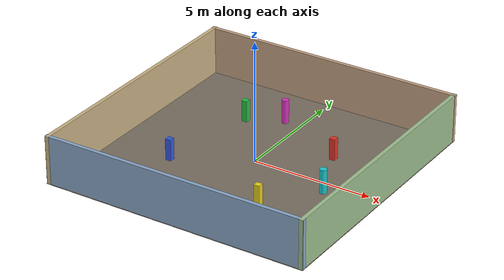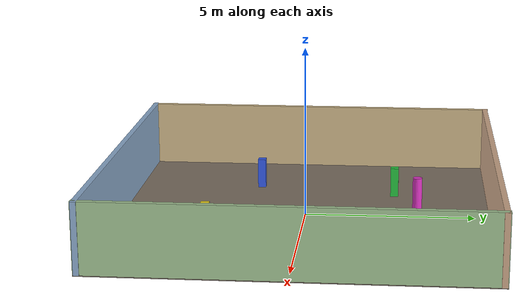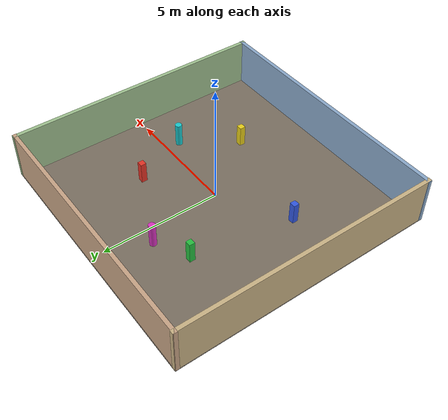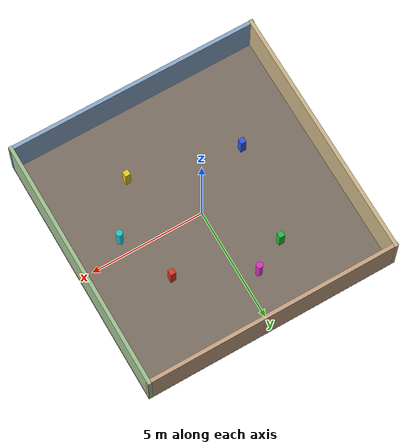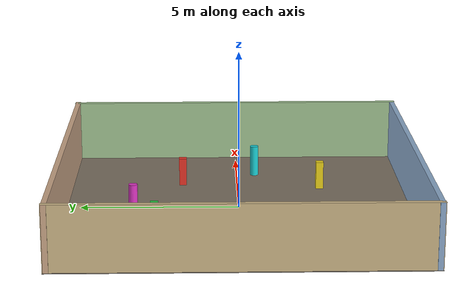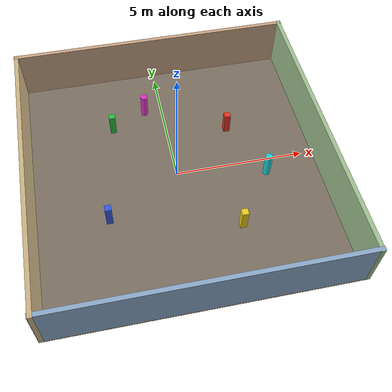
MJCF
<mujoco model="vslam_room">
  <asset>
    <texture type="2d" name="vs_floor" builtin="checker" mark="random" random="0.45"
             rgb1="0.55 0.50 0.44" rgb2="0.42 0.38 0.33" markrgb="0.20 0.16 0.12"
             width="512" height="512"/>
    <material name="vs_floor" texture="vs_floor" texrepeat="8 8" reflectance="0.03"/>

    <texture type="2d" name="vs_wall_n" builtin="checker" mark="random" random="0.45"
             rgb1="0.86 0.72 0.60" rgb2="0.72 0.58 0.46" markrgb="0.30 0.20 0.14" width="512" height="512"/>
    <texture type="2d" name="vs_wall_s" builtin="checker" mark="random" random="0.45"
             rgb1="0.62 0.74 0.86" rgb2="0.48 0.60 0.74" markrgb="0.16 0.24 0.36" width="512" height="512"/>
    <texture type="2d" name="vs_wall_e" builtin="checker" mark="random" random="0.45"
             rgb1="0.70 0.82 0.64" rgb2="0.56 0.70 0.50" markrgb="0.20 0.30 0.16" width="512" height="512"/>
    <texture type="2d" name="vs_wall_w" builtin="checker" mark="random" random="0.45"
             rgb1="0.86 0.78 0.60" rgb2="0.74 0.64 0.46" markrgb="0.32 0.26 0.14" width="512" height="512"/>
    <material name="vs_wall_n" texture="vs_wall_n" texrepeat="10 3"/>
    <material name="vs_wall_s" texture="vs_wall_s" texrepeat="10 3"/>
    <material name="vs_wall_e" texture="vs_wall_e" texrepeat="10 3"/>
    <material name="vs_wall_w" texture="vs_wall_w" texrepeat="10 3"/>

    <material name="vs_pillar_r" rgba="0.90 0.20 0.15 1"/>
    <material name="vs_pillar_g" rgba="0.15 0.75 0.25 1"/>
    <material name="vs_pillar_b" rgba="0.20 0.35 0.90 1"/>
    <material name="vs_pillar_y" rgba="0.92 0.82 0.10 1"/>
    <material name="vs_pillar_c" rgba="0.10 0.80 0.82 1"/>
    <material name="vs_pillar_m" rgba="0.85 0.20 0.75 1"/>
  </asset>

  <worldbody>
    <geom name="vs_floor" type="box" size="5.6 5.6 0.01" pos="0 0 -0.01"
          material="vs_floor" contype="1" conaffinity="1"/>

    <!-- Perimeter walls at ±5.5 m, 2 m tall (never seen over = no skybox in frame). -->
    <geom name="vs_wall_n" type="box" size="5.6 0.08 1.0" pos="0  5.5 1.0" material="vs_wall_n" contype="1" conaffinity="1"/>
    <geom name="vs_wall_s" type="box" size="5.6 0.08 1.0" pos="0 -5.5 1.0" material="vs_wall_s" contype="1" conaffinity="1"/>
    <geom name="vs_wall_e" type="box" size="0.08 5.6 1.0" pos=" 5.5 0 1.0" material="vs_wall_e" contype="1" conaffinity="1"/>
    <geom name="vs_wall_w" type="box" size="0.08 5.6 1.0" pos="-5.5 0 1.0" material="vs_wall_w" contype="1" conaffinity="1"/>

    <!-- Landmark pillars — asymmetric positions so no two places look alike; short enough that a
         head-down camera sees them. Clear of a ~3 m loop around the centre. -->
    <geom name="vs_pil_r" type="box" size="0.12 0.12 0.45" pos=" 2.4  1.8 0.45" material="vs_pillar_r" contype="1" conaffinity="1"/>
    <geom name="vs_pil_g" type="box" size="0.12 0.12 0.45" pos="-2.1  2.6 0.45" material="vs_pillar_g" contype="1" conaffinity="1"/>
    <geom name="vs_pil_b" type="box" size="0.12 0.12 0.45" pos="-2.8 -1.6 0.45" material="vs_pillar_b" contype="1" conaffinity="1"/>
    <geom name="vs_pil_y" type="box" size="0.12 0.12 0.45" pos=" 1.9 -2.7 0.45" material="vs_pillar_y" contype="1" conaffinity="1"/>
    <geom name="vs_pil_c" type="cylinder" size="0.14 0.5" pos=" 3.4 -0.6 0.5" material="vs_pillar_c" contype="1" conaffinity="1"/>
    <geom name="vs_pil_m" type="cylinder" size="0.14 0.5" pos="-0.7  3.3 0.5" material="vs_pillar_m" contype="1" conaffinity="1"/>
  </worldbody>
</mujoco>
